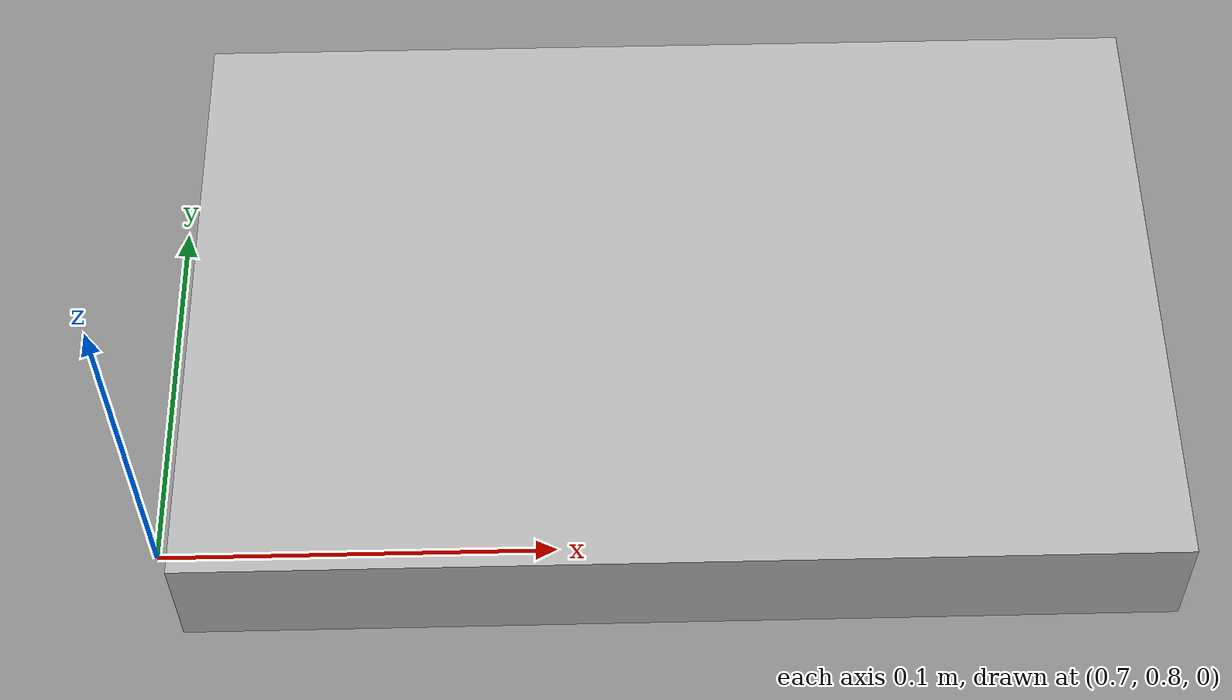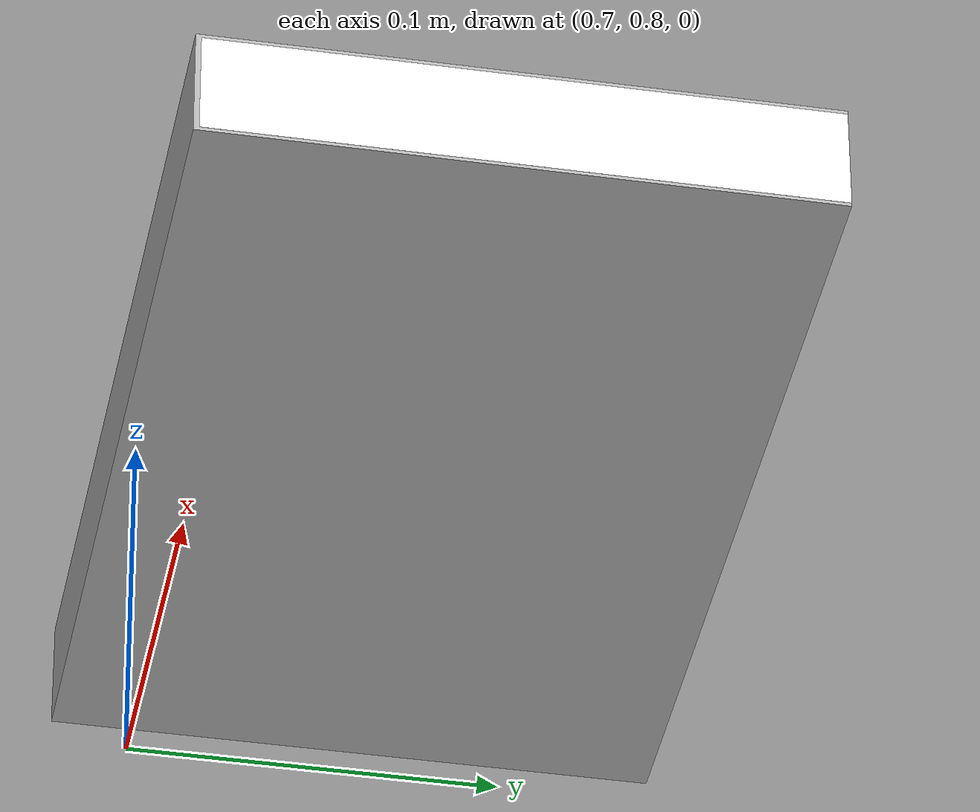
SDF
<?xml version='1.0'?>
<sdf version='1.6'>
<model name='book_2'>
<link name='cover'>
<pose frame=''>0 -0.000108 0.015405 0 -0 0</pose>
<self_collide>0</self_collide>
<kinematic>0</kinematic>
<gravity>1</gravity>
<visual name='visual'>
<geometry>
<box>
<size>0.245 0.16 0.03</size>
</box>
</geometry>
<material>
<script>
<uri>model://book_1/materials/scripts/book_2.material</uri>
<uri>model://book_1/materials/textures/cover2.jpg</uri>
<name>book_2</name>
</script>
</material>
<cast_shadows>1</cast_shadows>
<transparency>0</transparency>
</visual>
<collision name='collision'>
<laser_retro>0</laser_retro>
<max_contacts>10</max_contacts>
<geometry>
<box>
<size>0.245 0.16 0.03</size>
</box>
</geometry>
<surface>
<contact>
<ode/>
</contact>
<bounce/>
<friction>
<ode><mu>1000</mu><mu2>1000</mu2></ode>
</friction>
</surface>
</collision>
<inertial>
<inertia>
<ixx>0.00058</ixx>
<ixy>0</ixy>
<ixz>0</ixz>
<iyy>0.00058</iyy>
<iyz>0</iyz>
<izz>0.00019</izz>
</inertia>
<mass>0.05</mass>
</inertial>
</link>
<link name='page'>
<pose frame=''>0 0.000608 0.015405 0 -0 0</pose>
<visual name='visual'>
<pose frame=''>0 0 0 0 -0 0</pose>
<geometry>
<box>
<size>0.24502 0.15862 0.028</size>
</box>
</geometry>
<material>
<lighting>1</lighting>
<ambient>1 1 1 1</ambient>
<diffuse>1 1 1 1</diffuse>
<specular>0.01 0.01 0.01 1</specular>
<emissive>0 0 0 1</emissive>
<shader type='vertex'>
<normal_map>__default__</normal_map>
</shader>
</material>
<cast_shadows>1</cast_shadows>
<transparency>0</transparency>
</visual>
<collision name='collision'>
<laser_retro>0</laser_retro>
<max_contacts>10</max_contacts>
<pose frame=''>0 0 0 0 -0 0</pose>
<geometry>
<box>
<size>0.245 0.16 0.03</size>
</box>
</geometry>
<surface>
<contact>
<ode/>
</contact>
<bounce/>
<friction>
<ode><mu>1000</mu>
<mu2>1000</mu2>
</ode>
</friction>
</surface>
</collision>
<self_collide>0</self_collide>
<inertial>
<inertia>
<ixx>0.00058</ixx>
<ixy>0</ixy>
<ixz>0</ixz>
<iyy>0.00058</iyy>
<iyz>0</iyz>
<izz>0.00019</izz>
</inertia>
<mass>0.05</mass>
</inertial>
<kinematic>0</kinematic>
<gravity>1</gravity>
</link>
<static>0</static>
<allow_auto_disable>1</allow_auto_disable>
<pose frame=''>0.830691 0.858956 0 0 -0 0</pose>
</model>
</sdf>
